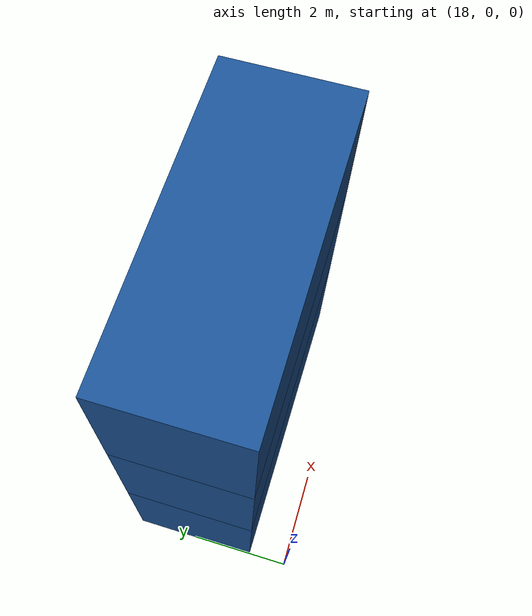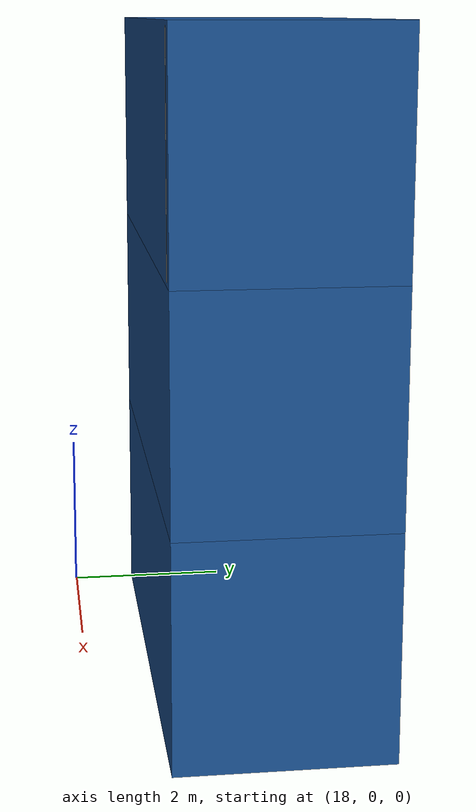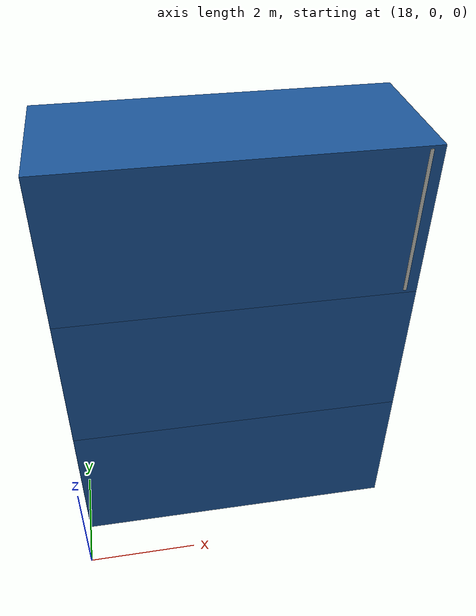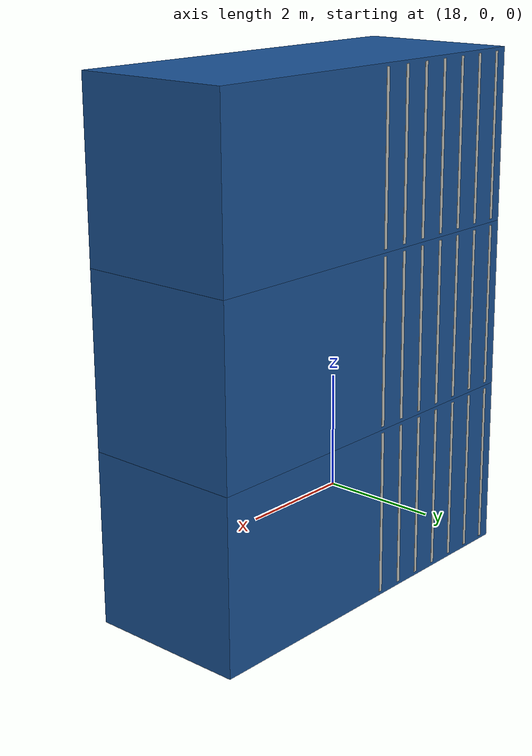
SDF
<sdf version="1.9">
 <world name="iris_mppi_industrial_yard">
  <model name="container_1_0">
   <static>true</static>
   <pose>21 2 1.3 0 0 0</pose>
   <link name="body">
    <collision name="collision"><geometry><box><size>6 2.44 2.6</size></box></geometry></collision>
    <visual name="visual">
     <geometry><box><size>6 2.44 2.6</size></box></geometry>
     <material><ambient>.10 .32 .58 1</ambient><diffuse>.10 .32 .58 1</diffuse></material>
    </visual>
   </link>
  </model>
  <model name="rib_1_0_0_1">
   <static>true</static>
   <pose>18.2 3.218 1.3 0 0 0</pose>
   <link name="body">
    <visual name="visual">
     <geometry><box><size>0.06 0.008 2.5</size></box></geometry>
     <material><ambient>.75 .75 .72 1</ambient><diffuse>.75 .75 .72 1</diffuse></material>
    </visual>
   </link>
  </model>
  <model name="rib_1_0_1_1">
   <static>true</static>
   <pose>18.63 3.218 1.3 0 0 0</pose>
   <link name="body">
    <visual name="visual">
     <geometry><box><size>0.06 0.008 2.5</size></box></geometry>
     <material><ambient>.75 .75 .72 1</ambient><diffuse>.75 .75 .72 1</diffuse></material>
    </visual>
   </link>
  </model>
  <model name="rib_1_0_2_1">
   <static>true</static>
   <pose>19.06 3.218 1.3 0 0 0</pose>
   <link name="body">
    <visual name="visual">
     <geometry><box><size>0.06 0.008 2.5</size></box></geometry>
     <material><ambient>.75 .75 .72 1</ambient><diffuse>.75 .75 .72 1</diffuse></material>
    </visual>
   </link>
  </model>
  <model name="rib_1_0_3_1">
   <static>true</static>
   <pose>19.49 3.218 1.3 0 0 0</pose>
   <link name="body">
    <visual name="visual">
     <geometry><box><size>0.06 0.008 2.5</size></box></geometry>
     <material><ambient>.75 .75 .72 1</ambient><diffuse>.75 .75 .72 1</diffuse></material>
    </visual>
   </link>
  </model>
  <model name="rib_1_0_4_1">
   <static>true</static>
   <pose>19.919999999999998 3.218 1.3 0 0 0</pose>
   <link name="body">
    <visual name="visual">
     <geometry><box><size>0.06 0.008 2.5</size></box></geometry>
     <material><ambient>.75 .75 .72 1</ambient><diffuse>.75 .75 .72 1</diffuse></material>
    </visual>
   </link>
  </model>
  <model name="rib_1_0_5_1">
   <static>true</static>
   <pose>20.349999999999998 3.218 1.3 0 0 0</pose>
   <link name="body">
    <visual name="visual">
     <geometry><box><size>0.06 0.008 2.5</size></box></geometry>
     <material><ambient>.75 .75 .72 1</ambient><diffuse>.75 .75 .72 1</diffuse></material>
    </visual>
   </link>
  </model>
  <model name="rib_1_0_6_1">
   <static>true</static>
   <pose>20.78 3.218 1.3 0 0 0</pose>
   <link name="body">
    <visual name="visual">
     <geometry><box><size>0.06 0.008 2.5</size></box></geometry>
     <material><ambient>.75 .75 .72 1</ambient><diffuse>.75 .75 .72 1</diffuse></material>
    </visual>
   </link>
  </model>
  <model name="container_1_1">
   <static>true</static>
   <pose>21 2 3.9000000000000004 0 0 0</pose>
   <link name="body">
    <collision name="collision"><geometry><box><size>6 2.44 2.6</size></box></geometry></collision>
    <visual name="visual">
     <geometry><box><size>6 2.44 2.6</size></box></geometry>
     <material><ambient>.10 .32 .58 1</ambient><diffuse>.10 .32 .58 1</diffuse></material>
    </visual>
   </link>
  </model>
  <model name="rib_1_1_0_1">
   <static>true</static>
   <pose>18.2 3.218 3.9000000000000004 0 0 0</pose>
   <link name="body">
    <visual name="visual">
     <geometry><box><size>0.06 0.008 2.5</size></box></geometry>
     <material><ambient>.75 .75 .72 1</ambient><diffuse>.75 .75 .72 1</diffuse></material>
    </visual>
   </link>
  </model>
  <model name="rib_1_1_1_1">
   <static>true</static>
   <pose>18.63 3.218 3.9000000000000004 0 0 0</pose>
   <link name="body">
    <visual name="visual">
     <geometry><box><size>0.06 0.008 2.5</size></box></geometry>
     <material><ambient>.75 .75 .72 1</ambient><diffuse>.75 .75 .72 1</diffuse></material>
    </visual>
   </link>
  </model>
  <model name="rib_1_1_2_1">
   <static>true</static>
   <pose>19.06 3.218 3.9000000000000004 0 0 0</pose>
   <link name="body">
    <visual name="visual">
     <geometry><box><size>0.06 0.008 2.5</size></box></geometry>
     <material><ambient>.75 .75 .72 1</ambient><diffuse>.75 .75 .72 1</diffuse></material>
    </visual>
   </link>
  </model>
  <model name="rib_1_1_3_1">
   <static>true</static>
   <pose>19.49 3.218 3.9000000000000004 0 0 0</pose>
   <link name="body">
    <visual name="visual">
     <geometry><box><size>0.06 0.008 2.5</size></box></geometry>
     <material><ambient>.75 .75 .72 1</ambient><diffuse>.75 .75 .72 1</diffuse></material>
    </visual>
   </link>
  </model>
  <model name="rib_1_1_4_1">
   <static>true</static>
   <pose>19.919999999999998 3.218 3.9000000000000004 0 0 0</pose>
   <link name="body">
    <visual name="visual">
     <geometry><box><size>0.06 0.008 2.5</size></box></geometry>
     <material><ambient>.75 .75 .72 1</ambient><diffuse>.75 .75 .72 1</diffuse></material>
    </visual>
   </link>
  </model>
  <model name="rib_1_1_5_1">
   <static>true</static>
   <pose>20.349999999999998 3.218 3.9000000000000004 0 0 0</pose>
   <link name="body">
    <visual name="visual">
     <geometry><box><size>0.06 0.008 2.5</size></box></geometry>
     <material><ambient>.75 .75 .72 1</ambient><diffuse>.75 .75 .72 1</diffuse></material>
    </visual>
   </link>
  </model>
  <model name="rib_1_1_6_1">
   <static>true</static>
   <pose>20.78 3.218 3.9000000000000004 0 0 0</pose>
   <link name="body">
    <visual name="visual">
     <geometry><box><size>0.06 0.008 2.5</size></box></geometry>
     <material><ambient>.75 .75 .72 1</ambient><diffuse>.75 .75 .72 1</diffuse></material>
    </visual>
   </link>
  </model>
  <model name="container_1_2">
   <static>true</static>
   <pose>21 2 6.5 0 0 0</pose>
   <link name="body">
    <collision name="collision"><geometry><box><size>6 2.44 2.6</size></box></geometry></collision>
    <visual name="visual">
     <geometry><box><size>6 2.44 2.6</size></box></geometry>
     <material><ambient>.10 .32 .58 1</ambient><diffuse>.10 .32 .58 1</diffuse></material>
    </visual>
   </link>
  </model>
  <model name="rib_1_2_0_1">
   <static>true</static>
   <pose>18.2 3.218 6.5 0 0 0</pose>
   <link name="body">
    <visual name="visual">
     <geometry><box><size>0.06 0.008 2.5</size></box></geometry>
     <material><ambient>.75 .75 .72 1</ambient><diffuse>.75 .75 .72 1</diffuse></material>
    </visual>
   </link>
  </model>
  <model name="rib_1_2_1_1">
   <static>true</static>
   <pose>18.63 3.218 6.5 0 0 0</pose>
   <link name="body">
    <visual name="visual">
     <geometry><box><size>0.06 0.008 2.5</size></box></geometry>
     <material><ambient>.75 .75 .72 1</ambient><diffuse>.75 .75 .72 1</diffuse></material>
    </visual>
   </link>
  </model>
  <model name="rib_1_2_2_1">
   <static>true</static>
   <pose>19.06 3.218 6.5 0 0 0</pose>
   <link name="body">
    <visual name="visual">
     <geometry><box><size>0.06 0.008 2.5</size></box></geometry>
     <material><ambient>.75 .75 .72 1</ambient><diffuse>.75 .75 .72 1</diffuse></material>
    </visual>
   </link>
  </model>
  <model name="rib_1_2_3_1">
   <static>true</static>
   <pose>19.49 3.218 6.5 0 0 0</pose>
   <link name="body">
    <visual name="visual">
     <geometry><box><size>0.06 0.008 2.5</size></box></geometry>
     <material><ambient>.75 .75 .72 1</ambient><diffuse>.75 .75 .72 1</diffuse></material>
    </visual>
   </link>
  </model>
  <model name="rib_1_2_4_1">
   <static>true</static>
   <pose>19.919999999999998 3.218 6.5 0 0 0</pose>
   <link name="body">
    <visual name="visual">
     <geometry><box><size>0.06 0.008 2.5</size></box></geometry>
     <material><ambient>.75 .75 .72 1</ambient><diffuse>.75 .75 .72 1</diffuse></material>
    </visual>
   </link>
  </model>
  <model name="rib_1_2_5_1">
   <static>true</static>
   <pose>20.349999999999998 3.218 6.5 0 0 0</pose>
   <link name="body">
    <visual name="visual">
     <geometry><box><size>0.06 0.008 2.5</size></box></geometry>
     <material><ambient>.75 .75 .72 1</ambient><diffuse>.75 .75 .72 1</diffuse></material>
    </visual>
   </link>
  </model>
  <model name="rib_1_2_6_1">
   <static>true</static>
   <pose>20.78 3.218 6.5 0 0 0</pose>
   <link name="body">
    <visual name="visual">
     <geometry><box><size>0.06 0.008 2.5</size></box></geometry>
     <material><ambient>.75 .75 .72 1</ambient><diffuse>.75 .75 .72 1</diffuse></material>
    </visual>
   </link>
  </model>
  <model name="rib_1_2_13_-1">
   <static>true</static>
   <pose>23.79 0.782 6.5 0 0 0</pose>
   <link name="body">
    <visual name="visual">
     <geometry><box><size>0.06 0.008 2.5</size></box></geometry>
     <material><ambient>.75 .75 .72 1</ambient><diffuse>.75 .75 .72 1</diffuse></material>
    </visual>
   </link>
  </model>
 </world>
</sdf>
